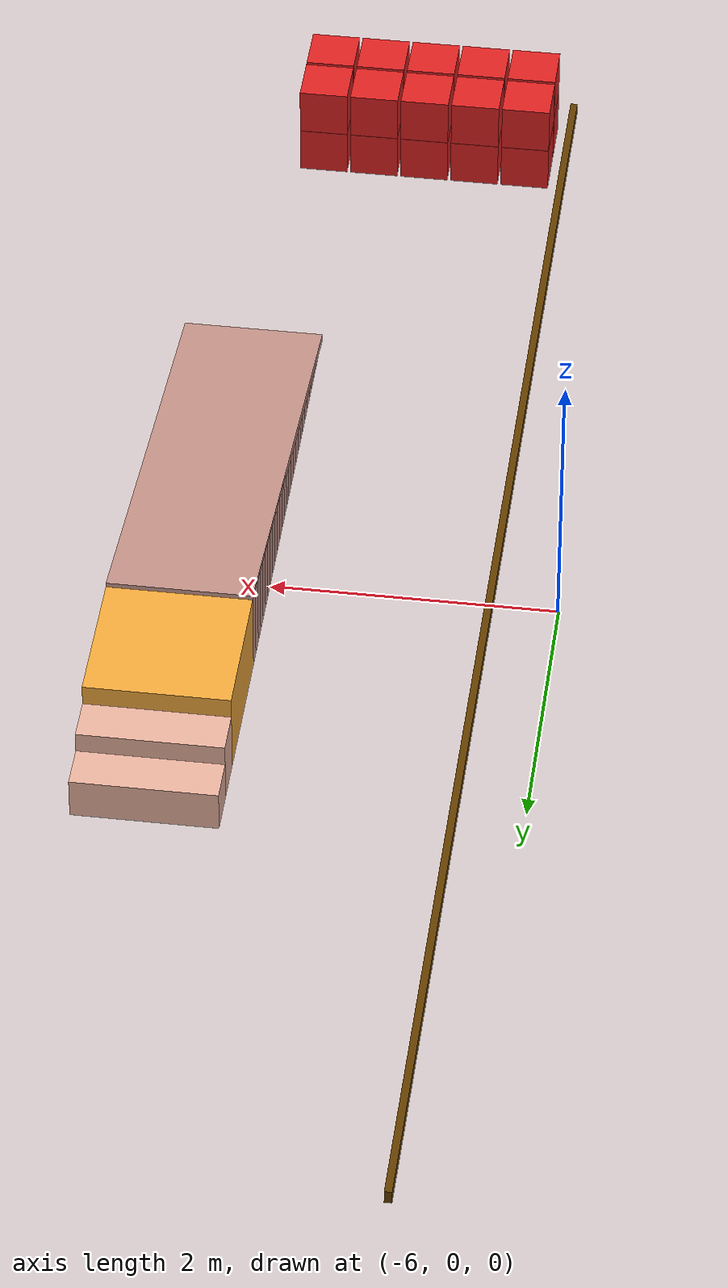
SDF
<sdf version="1.6">
 <world name="robocon2027_arena">
  <model name="fence_pW">
   <static>true</static>
   <pose>-5.5250 0.0000 0.0500 0.000000 0.000000 0.000000</pose>
   <link name="link">
    <collision name="col"><geometry><box><size>0.05 11.1 0.1</size></box></geometry></collision>
    <visual name="vis">
     <geometry><box><size>0.05 11.1 0.1</size></box></geometry>
     <material>
      <ambient>0.392 0.243 0.000 1.00</ambient>
      <diffuse>0.392 0.243 0.000 1.00</diffuse>
      <specular>0.04 0.04 0.04 1</specular>
      <emissive>0 0 0 1</emissive>
     </material>
    </visual>
   </link>
  </model>
  <model name="ramp_red">
   <static>true</static>
   <pose>-3.5000 -0.9500 0.3000 0.000000 -0.169778 1.570796</pose>
   <link name="link">
    <collision name="col"><geometry><box><size>3.5500000000000003 1.0 0.06</size></box></geometry></collision>
    <visual name="vis">
     <geometry><box><size>3.5500000000000003 1.0 0.06</size></box></geometry>
     <material>
      <ambient>0.784 0.588 0.549 1.00</ambient>
      <diffuse>0.784 0.588 0.549 1.00</diffuse>
      <specular>0.04 0.04 0.04 1</specular>
      <emissive>0 0 0 1</emissive>
     </material>
    </visual>
   </link>
  </model>
  <model name="rampsup_red_1">
   <static>true</static>
   <pose>-3.5000 -2.5250 0.0150 0.000000 0.000000 0.000000</pose>
   <link name="link">
    <collision name="col"><geometry><box><size>1.0 0.11866666666666698 0.03</size></box></geometry></collision>
    <visual name="vis">
     <geometry><box><size>1.0 0.11866666666666698 0.03</size></box></geometry>
     <material>
      <ambient>0.784 0.588 0.549 1.00</ambient>
      <diffuse>0.784 0.588 0.549 1.00</diffuse>
      <specular>0.04 0.04 0.04 1</specular>
      <emissive>0 0 0 1</emissive>
     </material>
    </visual>
   </link>
  </model>
  <model name="rampsup_red_2">
   <static>true</static>
   <pose>-3.5000 -2.4083 0.0250 0.000000 0.000000 0.000000</pose>
   <link name="link">
    <collision name="col">
     <geometry><box><size>1.0 0.11866666666666652 0.05000000000000005</size></box></geometry>
    </collision>
    <visual name="vis">
     <geometry><box><size>1.0 0.11866666666666652 0.05000000000000005</size></box></geometry>
     <material>
      <ambient>0.784 0.588 0.549 1.00</ambient>
      <diffuse>0.784 0.588 0.549 1.00</diffuse>
      <specular>0.04 0.04 0.04 1</specular>
      <emissive>0 0 0 1</emissive>
     </material>
    </visual>
   </link>
  </model>
  <model name="rampsup_red_3">
   <static>true</static>
   <pose>-3.5000 -2.2917 0.0350 0.000000 0.000000 0.000000</pose>
   <link name="link">
    <collision name="col">
     <geometry><box><size>1.0 0.11866666666666652 0.06999999999999995</size></box></geometry>
    </collision>
    <visual name="vis">
     <geometry><box><size>1.0 0.11866666666666652 0.06999999999999995</size></box></geometry>
     <material>
      <ambient>0.784 0.588 0.549 1.00</ambient>
      <diffuse>0.784 0.588 0.549 1.00</diffuse>
      <specular>0.04 0.04 0.04 1</specular>
      <emissive>0 0 0 1</emissive>
     </material>
    </visual>
   </link>
  </model>
  <model name="rampsup_red_4">
   <static>true</static>
   <pose>-3.5000 -2.1750 0.0450 0.000000 0.000000 0.000000</pose>
   <link name="link">
    <collision name="col"><geometry><box><size>1.0 0.11866666666666698 0.09</size></box></geometry></collision>
    <visual name="vis">
     <geometry><box><size>1.0 0.11866666666666698 0.09</size></box></geometry>
     <material>
      <ambient>0.784 0.588 0.549 1.00</ambient>
      <diffuse>0.784 0.588 0.549 1.00</diffuse>
      <specular>0.04 0.04 0.04 1</specular>
      <emissive>0 0 0 1</emissive>
     </material>
    </visual>
   </link>
  </model>
  <model name="rampsup_red_5">
   <static>true</static>
   <pose>-3.5000 -2.0583 0.0550 0.000000 0.000000 0.000000</pose>
   <link name="link">
    <collision name="col">
     <geometry><box><size>1.0 0.11866666666666652 0.11000000000000006</size></box></geometry>
    </collision>
    <visual name="vis">
     <geometry><box><size>1.0 0.11866666666666652 0.11000000000000006</size></box></geometry>
     <material>
      <ambient>0.784 0.588 0.549 1.00</ambient>
      <diffuse>0.784 0.588 0.549 1.00</diffuse>
      <specular>0.04 0.04 0.04 1</specular>
      <emissive>0 0 0 1</emissive>
     </material>
    </visual>
   </link>
  </model>
  <model name="rampsup_red_6">
   <static>true</static>
   <pose>-3.5000 -1.9417 0.0650 0.000000 0.000000 0.000000</pose>
   <link name="link">
    <collision name="col">
     <geometry><box><size>1.0 0.11866666666666652 0.12999999999999998</size></box></geometry>
    </collision>
    <visual name="vis">
     <geometry><box><size>1.0 0.11866666666666652 0.12999999999999998</size></box></geometry>
     <material>
      <ambient>0.784 0.588 0.549 1.00</ambient>
      <diffuse>0.784 0.588 0.549 1.00</diffuse>
      <specular>0.04 0.04 0.04 1</specular>
      <emissive>0 0 0 1</emissive>
     </material>
    </visual>
   </link>
  </model>
  <model name="rampsup_red_7">
   <static>true</static>
   <pose>-3.5000 -1.8250 0.0750 0.000000 0.000000 0.000000</pose>
   <link name="link">
    <collision name="col"><geometry><box><size>1.0 0.11866666666666698 0.15</size></box></geometry></collision>
    <visual name="vis">
     <geometry><box><size>1.0 0.11866666666666698 0.15</size></box></geometry>
     <material>
      <ambient>0.784 0.588 0.549 1.00</ambient>
      <diffuse>0.784 0.588 0.549 1.00</diffuse>
      <specular>0.04 0.04 0.04 1</specular>
      <emissive>0 0 0 1</emissive>
     </material>
    </visual>
   </link>
  </model>
  <model name="rampsup_red_8">
   <static>true</static>
   <pose>-3.5000 -1.7083 0.0850 0.000000 0.000000 0.000000</pose>
   <link name="link">
    <collision name="col"><geometry><box><size>1.0 0.11866666666666652 0.17</size></box></geometry></collision>
    <visual name="vis">
     <geometry><box><size>1.0 0.11866666666666652 0.17</size></box></geometry>
     <material>
      <ambient>0.784 0.588 0.549 1.00</ambient>
      <diffuse>0.784 0.588 0.549 1.00</diffuse>
      <specular>0.04 0.04 0.04 1</specular>
      <emissive>0 0 0 1</emissive>
     </material>
    </visual>
   </link>
  </model>
  <model name="rampsup_red_9">
   <static>true</static>
   <pose>-3.5000 -1.5917 0.0950 0.000000 0.000000 0.000000</pose>
   <link name="link">
    <collision name="col">
     <geometry><box><size>1.0 0.11866666666666674 0.19000000000000003</size></box></geometry>
    </collision>
    <visual name="vis">
     <geometry><box><size>1.0 0.11866666666666674 0.19000000000000003</size></box></geometry>
     <material>
      <ambient>0.784 0.588 0.549 1.00</ambient>
      <diffuse>0.784 0.588 0.549 1.00</diffuse>
      <specular>0.04 0.04 0.04 1</specular>
      <emissive>0 0 0 1</emissive>
     </material>
    </visual>
   </link>
  </model>
  <model name="rampsup_red_10">
   <static>true</static>
   <pose>-3.5000 -1.4750 0.1050 0.000000 0.000000 0.000000</pose>
   <link name="link">
    <collision name="col"><geometry><box><size>1.0 0.11866666666666652 0.21</size></box></geometry></collision>
    <visual name="vis">
     <geometry><box><size>1.0 0.11866666666666652 0.21</size></box></geometry>
     <material>
      <ambient>0.784 0.588 0.549 1.00</ambient>
      <diffuse>0.784 0.588 0.549 1.00</diffuse>
      <specular>0.04 0.04 0.04 1</specular>
      <emissive>0 0 0 1</emissive>
     </material>
    </visual>
   </link>
  </model>
  <model name="rampsup_red_11">
   <static>true</static>
   <pose>-3.5000 -1.3583 0.1150 0.000000 0.000000 0.000000</pose>
   <link name="link">
    <collision name="col">
     <geometry><box><size>1.0 0.11866666666666674 0.22999999999999998</size></box></geometry>
    </collision>
    <visual name="vis">
     <geometry><box><size>1.0 0.11866666666666674 0.22999999999999998</size></box></geometry>
     <material>
      <ambient>0.784 0.588 0.549 1.00</ambient>
      <diffuse>0.784 0.588 0.549 1.00</diffuse>
      <specular>0.04 0.04 0.04 1</specular>
      <emissive>0 0 0 1</emissive>
     </material>
    </visual>
   </link>
  </model>
  <model name="rampsup_red_12">
   <static>true</static>
   <pose>-3.5000 -1.2417 0.1250 0.000000 0.000000 0.000000</pose>
   <link name="link">
    <collision name="col">
     <geometry><box><size>1.0 0.11866666666666674 0.25000000000000006</size></box></geometry>
    </collision>
    <visual name="vis">
     <geometry><box><size>1.0 0.11866666666666674 0.25000000000000006</size></box></geometry>
     <material>
      <ambient>0.784 0.588 0.549 1.00</ambient>
      <diffuse>0.784 0.588 0.549 1.00</diffuse>
      <specular>0.04 0.04 0.04 1</specular>
      <emissive>0 0 0 1</emissive>
     </material>
    </visual>
   </link>
  </model>
  <model name="rampsup_red_13">
   <static>true</static>
   <pose>-3.5000 -1.1250 0.1350 0.000000 0.000000 0.000000</pose>
   <link name="link">
    <collision name="col"><geometry><box><size>1.0 0.11866666666666652 0.27</size></box></geometry></collision>
    <visual name="vis">
     <geometry><box><size>1.0 0.11866666666666652 0.27</size></box></geometry>
     <material>
      <ambient>0.784 0.588 0.549 1.00</ambient>
      <diffuse>0.784 0.588 0.549 1.00</diffuse>
      <specular>0.04 0.04 0.04 1</specular>
      <emissive>0 0 0 1</emissive>
     </material>
    </visual>
   </link>
  </model>
  <model name="rampsup_red_14">
   <static>true</static>
   <pose>-3.5000 -1.0083 0.1450 0.000000 0.000000 0.000000</pose>
   <link name="link">
    <collision name="col">
     <geometry><box><size>1.0 0.11866666666666674 0.2899999999999999</size></box></geometry>
    </collision>
    <visual name="vis">
     <geometry><box><size>1.0 0.11866666666666674 0.2899999999999999</size></box></geometry>
     <material>
      <ambient>0.784 0.588 0.549 1.00</ambient>
      <diffuse>0.784 0.588 0.549 1.00</diffuse>
      <specular>0.04 0.04 0.04 1</specular>
      <emissive>0 0 0 1</emissive>
     </material>
    </visual>
   </link>
  </model>
  <model name="rampsup_red_15">
   <static>true</static>
   <pose>-3.5000 -0.8917 0.1550 0.000000 0.000000 0.000000</pose>
   <link name="link">
    <collision name="col"><geometry><box><size>1.0 0.11866666666666674 0.31</size></box></geometry></collision>
    <visual name="vis">
     <geometry><box><size>1.0 0.11866666666666674 0.31</size></box></geometry>
     <material>
      <ambient>0.784 0.588 0.549 1.00</ambient>
      <diffuse>0.784 0.588 0.549 1.00</diffuse>
      <specular>0.04 0.04 0.04 1</specular>
      <emissive>0 0 0 1</emissive>
     </material>
    </visual>
   </link>
  </model>
  <model name="rampsup_red_16">
   <static>true</static>
   <pose>-3.5000 -0.7750 0.1650 0.000000 0.000000 0.000000</pose>
   <link name="link">
    <collision name="col"><geometry><box><size>1.0 0.11866666666666652 0.33</size></box></geometry></collision>
    <visual name="vis">
     <geometry><box><size>1.0 0.11866666666666652 0.33</size></box></geometry>
     <material>
      <ambient>0.784 0.588 0.549 1.00</ambient>
      <diffuse>0.784 0.588 0.549 1.00</diffuse>
      <specular>0.04 0.04 0.04 1</specular>
      <emissive>0 0 0 1</emissive>
     </material>
    </visual>
   </link>
  </model>
  <model name="rampsup_red_17">
   <static>true</static>
   <pose>-3.5000 -0.6583 0.1750 0.000000 0.000000 0.000000</pose>
   <link name="link">
    <collision name="col">
     <geometry><box><size>1.0 0.11866666666666674 0.35000000000000003</size></box></geometry>
    </collision>
    <visual name="vis">
     <geometry><box><size>1.0 0.11866666666666674 0.35000000000000003</size></box></geometry>
     <material>
      <ambient>0.784 0.588 0.549 1.00</ambient>
      <diffuse>0.784 0.588 0.549 1.00</diffuse>
      <specular>0.04 0.04 0.04 1</specular>
      <emissive>0 0 0 1</emissive>
     </material>
    </visual>
   </link>
  </model>
  <model name="rampsup_red_18">
   <static>true</static>
   <pose>-3.5000 -0.5417 0.1850 0.000000 0.000000 0.000000</pose>
   <link name="link">
    <collision name="col">
     <geometry><box><size>1.0 0.11866666666666652 0.36999999999999994</size></box></geometry>
    </collision>
    <visual name="vis">
     <geometry><box><size>1.0 0.11866666666666652 0.36999999999999994</size></box></geometry>
     <material>
      <ambient>0.784 0.588 0.549 1.00</ambient>
      <diffuse>0.784 0.588 0.549 1.00</diffuse>
      <specular>0.04 0.04 0.04 1</specular>
      <emissive>0 0 0 1</emissive>
     </material>
    </visual>
   </link>
  </model>
  <model name="rampsup_red_19">
   <static>true</static>
   <pose>-3.5000 -0.4250 0.1950 0.000000 0.000000 0.000000</pose>
   <link name="link">
    <collision name="col"><geometry><box><size>1.0 0.11866666666666698 0.39</size></box></geometry></collision>
    <visual name="vis">
     <geometry><box><size>1.0 0.11866666666666698 0.39</size></box></geometry>
     <material>
      <ambient>0.784 0.588 0.549 1.00</ambient>
      <diffuse>0.784 0.588 0.549 1.00</diffuse>
      <specular>0.04 0.04 0.04 1</specular>
      <emissive>0 0 0 1</emissive>
     </material>
    </visual>
   </link>
  </model>
  <model name="rampsup_red_20">
   <static>true</static>
   <pose>-3.5000 -0.3083 0.2050 0.000000 0.000000 0.000000</pose>
   <link name="link">
    <collision name="col">
     <geometry><box><size>1.0 0.11866666666666652 0.4100000000000001</size></box></geometry>
    </collision>
    <visual name="vis">
     <geometry><box><size>1.0 0.11866666666666652 0.4100000000000001</size></box></geometry>
     <material>
      <ambient>0.784 0.588 0.549 1.00</ambient>
      <diffuse>0.784 0.588 0.549 1.00</diffuse>
      <specular>0.04 0.04 0.04 1</specular>
      <emissive>0 0 0 1</emissive>
     </material>
    </visual>
   </link>
  </model>
  <model name="rampsup_red_21">
   <static>true</static>
   <pose>-3.5000 -0.1917 0.2150 0.000000 0.000000 0.000000</pose>
   <link name="link">
    <collision name="col">
     <geometry><box><size>1.0 0.11866666666666652 0.42999999999999994</size></box></geometry>
    </collision>
    <visual name="vis">
     <geometry><box><size>1.0 0.11866666666666652 0.42999999999999994</size></box></geometry>
     <material>
      <ambient>0.784 0.588 0.549 1.00</ambient>
      <diffuse>0.784 0.588 0.549 1.00</diffuse>
      <specular>0.04 0.04 0.04 1</specular>
      <emissive>0 0 0 1</emissive>
     </material>
    </visual>
   </link>
  </model>
  <model name="rampsup_red_22">
   <static>true</static>
   <pose>-3.5000 -0.0750 0.2250 0.000000 0.000000 0.000000</pose>
   <link name="link">
    <collision name="col"><geometry><box><size>1.0 0.11866666666666698 0.45</size></box></geometry></collision>
    <visual name="vis">
     <geometry><box><size>1.0 0.11866666666666698 0.45</size></box></geometry>
     <material>
      <ambient>0.784 0.588 0.549 1.00</ambient>
      <diffuse>0.784 0.588 0.549 1.00</diffuse>
      <specular>0.04 0.04 0.04 1</specular>
      <emissive>0 0 0 1</emissive>
     </material>
    </visual>
   </link>
  </model>
  <model name="rampsup_red_23">
   <static>true</static>
   <pose>-3.5000 0.0417 0.2350 0.000000 0.000000 0.000000</pose>
   <link name="link">
    <collision name="col">
     <geometry><box><size>1.0 0.11866666666666652 0.4700000000000001</size></box></geometry>
    </collision>
    <visual name="vis">
     <geometry><box><size>1.0 0.11866666666666652 0.4700000000000001</size></box></geometry>
     <material>
      <ambient>0.784 0.588 0.549 1.00</ambient>
      <diffuse>0.784 0.588 0.549 1.00</diffuse>
      <specular>0.04 0.04 0.04 1</specular>
      <emissive>0 0 0 1</emissive>
     </material>
    </visual>
   </link>
  </model>
  <model name="rampsup_red_24">
   <static>true</static>
   <pose>-3.5000 0.1583 0.2450 0.000000 0.000000 0.000000</pose>
   <link name="link">
    <collision name="col">
     <geometry><box><size>1.0 0.11866666666666652 0.48999999999999994</size></box></geometry>
    </collision>
    <visual name="vis">
     <geometry><box><size>1.0 0.11866666666666652 0.48999999999999994</size></box></geometry>
     <material>
      <ambient>0.784 0.588 0.549 1.00</ambient>
      <diffuse>0.784 0.588 0.549 1.00</diffuse>
      <specular>0.04 0.04 0.04 1</specular>
      <emissive>0 0 0 1</emissive>
     </material>
    </visual>
   </link>
  </model>
  <model name="rampsup_red_25">
   <static>true</static>
   <pose>-3.5000 0.2750 0.2550 0.000000 0.000000 0.000000</pose>
   <link name="link">
    <collision name="col"><geometry><box><size>1.0 0.11866666666666698 0.51</size></box></geometry></collision>
    <visual name="vis">
     <geometry><box><size>1.0 0.11866666666666698 0.51</size></box></geometry>
     <material>
      <ambient>0.784 0.588 0.549 1.00</ambient>
      <diffuse>0.784 0.588 0.549 1.00</diffuse>
      <specular>0.04 0.04 0.04 1</specular>
      <emissive>0 0 0 1</emissive>
     </material>
    </visual>
   </link>
  </model>
  <model name="rampsup_red_26">
   <static>true</static>
   <pose>-3.5000 0.3917 0.2650 0.000000 0.000000 0.000000</pose>
   <link name="link">
    <collision name="col">
     <geometry><box><size>1.0 0.11866666666666652 0.5300000000000001</size></box></geometry>
    </collision>
    <visual name="vis">
     <geometry><box><size>1.0 0.11866666666666652 0.5300000000000001</size></box></geometry>
     <material>
      <ambient>0.784 0.588 0.549 1.00</ambient>
      <diffuse>0.784 0.588 0.549 1.00</diffuse>
      <specular>0.04 0.04 0.04 1</specular>
      <emissive>0 0 0 1</emissive>
     </material>
    </visual>
   </link>
  </model>
  <model name="rampsup_red_27">
   <static>true</static>
   <pose>-3.5000 0.5083 0.2750 0.000000 0.000000 0.000000</pose>
   <link name="link">
    <collision name="col">
     <geometry><box><size>1.0 0.11866666666666652 0.5499999999999999</size></box></geometry>
    </collision>
    <visual name="vis">
     <geometry><box><size>1.0 0.11866666666666652 0.5499999999999999</size></box></geometry>
     <material>
      <ambient>0.784 0.588 0.549 1.00</ambient>
      <diffuse>0.784 0.588 0.549 1.00</diffuse>
      <specular>0.04 0.04 0.04 1</specular>
      <emissive>0 0 0 1</emissive>
     </material>
    </visual>
   </link>
  </model>
  <model name="rampsup_red_28">
   <static>true</static>
   <pose>-3.5000 0.6250 0.2850 0.000000 0.000000 0.000000</pose>
   <link name="link">
    <collision name="col">
     <geometry><box><size>1.0 0.11866666666666698 0.5700000000000001</size></box></geometry>
    </collision>
    <visual name="vis">
     <geometry><box><size>1.0 0.11866666666666698 0.5700000000000001</size></box></geometry>
     <material>
      <ambient>0.784 0.588 0.549 1.00</ambient>
      <diffuse>0.784 0.588 0.549 1.00</diffuse>
      <specular>0.04 0.04 0.04 1</specular>
      <emissive>0 0 0 1</emissive>
     </material>
    </visual>
   </link>
  </model>
  <model name="rampsup_red_29">
   <static>true</static>
   <pose>-3.5000 0.7417 0.2950 0.000000 0.000000 0.000000</pose>
   <link name="link">
    <collision name="col">
     <geometry><box><size>1.0 0.11866666666666652 0.5900000000000001</size></box></geometry>
    </collision>
    <visual name="vis">
     <geometry><box><size>1.0 0.11866666666666652 0.5900000000000001</size></box></geometry>
     <material>
      <ambient>0.784 0.588 0.549 1.00</ambient>
      <diffuse>0.784 0.588 0.549 1.00</diffuse>
      <specular>0.04 0.04 0.04 1</specular>
      <emissive>0 0 0 1</emissive>
     </material>
    </visual>
   </link>
  </model>
  <model name="plat_red">
   <static>true</static>
   <pose>-3.5000 1.3000 0.3000 0.000000 0.000000 0.000000</pose>
   <link name="link">
    <collision name="col"><geometry><box><size>1.0 1.0 0.6</size></box></geometry></collision>
    <visual name="vis">
     <geometry><box><size>1.0 1.0 0.6</size></box></geometry>
     <material>
      <ambient>0.961 0.667 0.235 1.00</ambient>
      <diffuse>0.961 0.667 0.235 1.00</diffuse>
      <specular>0.04 0.04 0.04 1</specular>
      <emissive>0 0 0 1</emissive>
     </material>
    </visual>
   </link>
  </model>
  <model name="stp_red_0">
   <static>true</static>
   <pose>-3.5000 1.9500 0.2250 0.000000 0.000000 0.000000</pose>
   <link name="link">
    <collision name="col"><geometry><box><size>1.0 0.3 0.45</size></box></geometry></collision>
    <visual name="vis">
     <geometry><box><size>1.0 0.3 0.45</size></box></geometry>
     <material>
      <ambient>0.922 0.706 0.627 1.00</ambient>
      <diffuse>0.922 0.706 0.627 1.00</diffuse>
      <specular>0.04 0.04 0.04 1</specular>
      <emissive>0 0 0 1</emissive>
     </material>
    </visual>
   </link>
  </model>
  <model name="stp_red_1">
   <static>true</static>
   <pose>-3.5000 2.2500 0.1500 0.000000 0.000000 0.000000</pose>
   <link name="link">
    <collision name="col"><geometry><box><size>1.0 0.3 0.3</size></box></geometry></collision>
    <visual name="vis">
     <geometry><box><size>1.0 0.3 0.3</size></box></geometry>
     <material>
      <ambient>0.922 0.706 0.627 1.00</ambient>
      <diffuse>0.922 0.706 0.627 1.00</diffuse>
      <specular>0.04 0.04 0.04 1</specular>
      <emissive>0 0 0 1</emissive>
     </material>
    </visual>
   </link>
  </model>
  <model name="earth_0">
   <static>false</static>
   <pose>-5.2500 -5.1875 0.1750 0 0 0</pose>
   <link name="link">
    <inertial><mass>0.6</mass><inertia><ixx>0.01225</ixx><iyy>0.01225</iyy><izz>0.01225</izz></inertia></inertial>
    <collision name="col">
     <geometry><box><size>0.35000000000000003 0.35000000000000003 0.35000000000000003</size></box></geometry>
    </collision>
    <visual name="vis">
     <geometry><box><size>0.35000000000000003 0.35000000000000003 0.35000000000000003</size></box></geometry>
     <material>
      <ambient>0.875 0.133 0.133 1.00</ambient>
      <diffuse>0.875 0.133 0.133 1.00</diffuse>
      <specular>0.04 0.04 0.04 1</specular>
      <emissive>0 0 0 1</emissive>
     </material>
    </visual>
   </link>
  </model>
  <model name="earth_1">
   <static>false</static>
   <pose>-5.2500 -5.1875 0.5280 0 0 0</pose>
   <link name="link">
    <inertial><mass>0.6</mass><inertia><ixx>0.01225</ixx><iyy>0.01225</iyy><izz>0.01225</izz></inertia></inertial>
    <collision name="col">
     <geometry><box><size>0.35000000000000003 0.35000000000000003 0.35000000000000003</size></box></geometry>
    </collision>
    <visual name="vis">
     <geometry><box><size>0.35000000000000003 0.35000000000000003 0.35000000000000003</size></box></geometry>
     <material>
      <ambient>0.875 0.133 0.133 1.00</ambient>
      <diffuse>0.875 0.133 0.133 1.00</diffuse>
      <specular>0.04 0.04 0.04 1</specular>
      <emissive>0 0 0 1</emissive>
     </material>
    </visual>
   </link>
  </model>
  <model name="earth_2">
   <static>false</static>
   <pose>-5.2500 -4.8125 0.1750 0 0 0</pose>
   <link name="link">
    <inertial><mass>0.6</mass><inertia><ixx>0.01225</ixx><iyy>0.01225</iyy><izz>0.01225</izz></inertia></inertial>
    <collision name="col">
     <geometry><box><size>0.35000000000000003 0.35000000000000003 0.35000000000000003</size></box></geometry>
    </collision>
    <visual name="vis">
     <geometry><box><size>0.35000000000000003 0.35000000000000003 0.35000000000000003</size></box></geometry>
     <material>
      <ambient>0.875 0.133 0.133 1.00</ambient>
      <diffuse>0.875 0.133 0.133 1.00</diffuse>
      <specular>0.04 0.04 0.04 1</specular>
      <emissive>0 0 0 1</emissive>
     </material>
    </visual>
   </link>
  </model>
  <model name="earth_3">
   <static>false</static>
   <pose>-5.2500 -4.8125 0.5280 0 0 0</pose>
   <link name="link">
    <inertial><mass>0.6</mass><inertia><ixx>0.01225</ixx><iyy>0.01225</iyy><izz>0.01225</izz></inertia></inertial>
    <collision name="col">
     <geometry><box><size>0.35000000000000003 0.35000000000000003 0.35000000000000003</size></box></geometry>
    </collision>
    <visual name="vis">
     <geometry><box><size>0.35000000000000003 0.35000000000000003 0.35000000000000003</size></box></geometry>
     <material>
      <ambient>0.875 0.133 0.133 1.00</ambient>
      <diffuse>0.875 0.133 0.133 1.00</diffuse>
      <specular>0.04 0.04 0.04 1</specular>
      <emissive>0 0 0 1</emissive>
     </material>
    </visual>
   </link>
  </model>
  <model name="earth_4">
   <static>false</static>
   <pose>-4.8750 -5.1875 0.1750 0 0 0</pose>
   <link name="link">
    <inertial><mass>0.6</mass><inertia><ixx>0.01225</ixx><iyy>0.01225</iyy><izz>0.01225</izz></inertia></inertial>
    <collision name="col">
     <geometry><box><size>0.35000000000000003 0.35000000000000003 0.35000000000000003</size></box></geometry>
    </collision>
    <visual name="vis">
     <geometry><box><size>0.35000000000000003 0.35000000000000003 0.35000000000000003</size></box></geometry>
     <material>
      <ambient>0.875 0.133 0.133 1.00</ambient>
      <diffuse>0.875 0.133 0.133 1.00</diffuse>
      <specular>0.04 0.04 0.04 1</specular>
      <emissive>0 0 0 1</emissive>
     </material>
    </visual>
   </link>
  </model>
  <model name="earth_5">
   <static>false</static>
   <pose>-4.8750 -5.1875 0.5280 0 0 0</pose>
   <link name="link">
    <inertial><mass>0.6</mass><inertia><ixx>0.01225</ixx><iyy>0.01225</iyy><izz>0.01225</izz></inertia></inertial>
    <collision name="col">
     <geometry><box><size>0.35000000000000003 0.35000000000000003 0.35000000000000003</size></box></geometry>
    </collision>
    <visual name="vis">
     <geometry><box><size>0.35000000000000003 0.35000000000000003 0.35000000000000003</size></box></geometry>
     <material>
      <ambient>0.875 0.133 0.133 1.00</ambient>
      <diffuse>0.875 0.133 0.133 1.00</diffuse>
      <specular>0.04 0.04 0.04 1</specular>
      <emissive>0 0 0 1</emissive>
     </material>
    </visual>
   </link>
  </model>
  <model name="earth_6">
   <static>false</static>
   <pose>-4.8750 -4.8125 0.1750 0 0 0</pose>
   <link name="link">
    <inertial><mass>0.6</mass><inertia><ixx>0.01225</ixx><iyy>0.01225</iyy><izz>0.01225</izz></inertia></inertial>
    <collision name="col">
     <geometry><box><size>0.35000000000000003 0.35000000000000003 0.35000000000000003</size></box></geometry>
    </collision>
    <visual name="vis">
     <geometry><box><size>0.35000000000000003 0.35000000000000003 0.35000000000000003</size></box></geometry>
     <material>
      <ambient>0.875 0.133 0.133 1.00</ambient>
      <diffuse>0.875 0.133 0.133 1.00</diffuse>
      <specular>0.04 0.04 0.04 1</specular>
      <emissive>0 0 0 1</emissive>
     </material>
    </visual>
   </link>
  </model>
  <model name="earth_7">
   <static>false</static>
   <pose>-4.8750 -4.8125 0.5280 0 0 0</pose>
   <link name="link">
    <inertial><mass>0.6</mass><inertia><ixx>0.01225</ixx><iyy>0.01225</iyy><izz>0.01225</izz></inertia></inertial>
    <collision name="col">
     <geometry><box><size>0.35000000000000003 0.35000000000000003 0.35000000000000003</size></box></geometry>
    </collision>
    <visual name="vis">
     <geometry><box><size>0.35000000000000003 0.35000000000000003 0.35000000000000003</size></box></geometry>
     <material>
      <ambient>0.875 0.133 0.133 1.00</ambient>
      <diffuse>0.875 0.133 0.133 1.00</diffuse>
      <specular>0.04 0.04 0.04 1</specular>
      <emissive>0 0 0 1</emissive>
     </material>
    </visual>
   </link>
  </model>
  <model name="earth_8">
   <static>false</static>
   <pose>-4.5000 -5.1875 0.1750 0 0 0</pose>
   <link name="link">
    <inertial><mass>0.6</mass><inertia><ixx>0.01225</ixx><iyy>0.01225</iyy><izz>0.01225</izz></inertia></inertial>
    <collision name="col">
     <geometry><box><size>0.35000000000000003 0.35000000000000003 0.35000000000000003</size></box></geometry>
    </collision>
    <visual name="vis">
     <geometry><box><size>0.35000000000000003 0.35000000000000003 0.35000000000000003</size></box></geometry>
     <material>
      <ambient>0.875 0.133 0.133 1.00</ambient>
      <diffuse>0.875 0.133 0.133 1.00</diffuse>
      <specular>0.04 0.04 0.04 1</specular>
      <emissive>0 0 0 1</emissive>
     </material>
    </visual>
   </link>
  </model>
  <model name="earth_9">
   <static>false</static>
   <pose>-4.5000 -5.1875 0.5280 0 0 0</pose>
   <link name="link">
    <inertial><mass>0.6</mass><inertia><ixx>0.01225</ixx><iyy>0.01225</iyy><izz>0.01225</izz></inertia></inertial>
    <collision name="col">
     <geometry><box><size>0.35000000000000003 0.35000000000000003 0.35000000000000003</size></box></geometry>
    </collision>
    <visual name="vis">
     <geometry><box><size>0.35000000000000003 0.35000000000000003 0.35000000000000003</size></box></geometry>
     <material>
      <ambient>0.875 0.133 0.133 1.00</ambient>
      <diffuse>0.875 0.133 0.133 1.00</diffuse>
      <specular>0.04 0.04 0.04 1</specular>
      <emissive>0 0 0 1</emissive>
     </material>
    </visual>
   </link>
  </model>
  <model name="earth_10">
   <static>false</static>
   <pose>-4.5000 -4.8125 0.1750 0 0 0</pose>
   <link name="link">
    <inertial><mass>0.6</mass><inertia><ixx>0.01225</ixx><iyy>0.01225</iyy><izz>0.01225</izz></inertia></inertial>
    <collision name="col">
     <geometry><box><size>0.35000000000000003 0.35000000000000003 0.35000000000000003</size></box></geometry>
    </collision>
    <visual name="vis">
     <geometry><box><size>0.35000000000000003 0.35000000000000003 0.35000000000000003</size></box></geometry>
     <material>
      <ambient>0.875 0.133 0.133 1.00</ambient>
      <diffuse>0.875 0.133 0.133 1.00</diffuse>
      <specular>0.04 0.04 0.04 1</specular>
      <emissive>0 0 0 1</emissive>
     </material>
    </visual>
   </link>
  </model>
  <model name="earth_11">
   <static>false</static>
   <pose>-4.5000 -4.8125 0.5280 0 0 0</pose>
   <link name="link">
    <inertial><mass>0.6</mass><inertia><ixx>0.01225</ixx><iyy>0.01225</iyy><izz>0.01225</izz></inertia></inertial>
    <collision name="col">
     <geometry><box><size>0.35000000000000003 0.35000000000000003 0.35000000000000003</size></box></geometry>
    </collision>
    <visual name="vis">
     <geometry><box><size>0.35000000000000003 0.35000000000000003 0.35000000000000003</size></box></geometry>
     <material>
      <ambient>0.875 0.133 0.133 1.00</ambient>
      <diffuse>0.875 0.133 0.133 1.00</diffuse>
      <specular>0.04 0.04 0.04 1</specular>
      <emissive>0 0 0 1</emissive>
     </material>
    </visual>
   </link>
  </model>
  <model name="earth_12">
   <static>false</static>
   <pose>-4.1250 -5.1875 0.1750 0 0 0</pose>
   <link name="link">
    <inertial><mass>0.6</mass><inertia><ixx>0.01225</ixx><iyy>0.01225</iyy><izz>0.01225</izz></inertia></inertial>
    <collision name="col">
     <geometry><box><size>0.35000000000000003 0.35000000000000003 0.35000000000000003</size></box></geometry>
    </collision>
    <visual name="vis">
     <geometry><box><size>0.35000000000000003 0.35000000000000003 0.35000000000000003</size></box></geometry>
     <material>
      <ambient>0.875 0.133 0.133 1.00</ambient>
      <diffuse>0.875 0.133 0.133 1.00</diffuse>
      <specular>0.04 0.04 0.04 1</specular>
      <emissive>0 0 0 1</emissive>
     </material>
    </visual>
   </link>
  </model>
  <model name="earth_13">
   <static>false</static>
   <pose>-4.1250 -5.1875 0.5280 0 0 0</pose>
   <link name="link">
    <inertial><mass>0.6</mass><inertia><ixx>0.01225</ixx><iyy>0.01225</iyy><izz>0.01225</izz></inertia></inertial>
    <collision name="col">
     <geometry><box><size>0.35000000000000003 0.35000000000000003 0.35000000000000003</size></box></geometry>
    </collision>
    <visual name="vis">
     <geometry><box><size>0.35000000000000003 0.35000000000000003 0.35000000000000003</size></box></geometry>
     <material>
      <ambient>0.875 0.133 0.133 1.00</ambient>
      <diffuse>0.875 0.133 0.133 1.00</diffuse>
      <specular>0.04 0.04 0.04 1</specular>
      <emissive>0 0 0 1</emissive>
     </material>
    </visual>
   </link>
  </model>
  <model name="earth_14">
   <static>false</static>
   <pose>-4.1250 -4.8125 0.1750 0 0 0</pose>
   <link name="link">
    <inertial><mass>0.6</mass><inertia><ixx>0.01225</ixx><iyy>0.01225</iyy><izz>0.01225</izz></inertia></inertial>
    <collision name="col">
     <geometry><box><size>0.35000000000000003 0.35000000000000003 0.35000000000000003</size></box></geometry>
    </collision>
    <visual name="vis">
     <geometry><box><size>0.35000000000000003 0.35000000000000003 0.35000000000000003</size></box></geometry>
     <material>
      <ambient>0.875 0.133 0.133 1.00</ambient>
      <diffuse>0.875 0.133 0.133 1.00</diffuse>
      <specular>0.04 0.04 0.04 1</specular>
      <emissive>0 0 0 1</emissive>
     </material>
    </visual>
   </link>
  </model>
  <model name="earth_15">
   <static>false</static>
   <pose>-4.1250 -4.8125 0.5280 0 0 0</pose>
   <link name="link">
    <inertial><mass>0.6</mass><inertia><ixx>0.01225</ixx><iyy>0.01225</iyy><izz>0.01225</izz></inertia></inertial>
    <collision name="col">
     <geometry><box><size>0.35000000000000003 0.35000000000000003 0.35000000000000003</size></box></geometry>
    </collision>
    <visual name="vis">
     <geometry><box><size>0.35000000000000003 0.35000000000000003 0.35000000000000003</size></box></geometry>
     <material>
      <ambient>0.875 0.133 0.133 1.00</ambient>
      <diffuse>0.875 0.133 0.133 1.00</diffuse>
      <specular>0.04 0.04 0.04 1</specular>
      <emissive>0 0 0 1</emissive>
     </material>
    </visual>
   </link>
  </model>
  <model name="earth_16">
   <static>false</static>
   <pose>-3.7500 -5.1875 0.1750 0 0 0</pose>
   <link name="link">
    <inertial><mass>0.6</mass><inertia><ixx>0.01225</ixx><iyy>0.01225</iyy><izz>0.01225</izz></inertia></inertial>
    <collision name="col">
     <geometry><box><size>0.35000000000000003 0.35000000000000003 0.35000000000000003</size></box></geometry>
    </collision>
    <visual name="vis">
     <geometry><box><size>0.35000000000000003 0.35000000000000003 0.35000000000000003</size></box></geometry>
     <material>
      <ambient>0.875 0.133 0.133 1.00</ambient>
      <diffuse>0.875 0.133 0.133 1.00</diffuse>
      <specular>0.04 0.04 0.04 1</specular>
      <emissive>0 0 0 1</emissive>
     </material>
    </visual>
   </link>
  </model>
  <model name="earth_17">
   <static>false</static>
   <pose>-3.7500 -5.1875 0.5280 0 0 0</pose>
   <link name="link">
    <inertial><mass>0.6</mass><inertia><ixx>0.01225</ixx><iyy>0.01225</iyy><izz>0.01225</izz></inertia></inertial>
    <collision name="col">
     <geometry><box><size>0.35000000000000003 0.35000000000000003 0.35000000000000003</size></box></geometry>
    </collision>
    <visual name="vis">
     <geometry><box><size>0.35000000000000003 0.35000000000000003 0.35000000000000003</size></box></geometry>
     <material>
      <ambient>0.875 0.133 0.133 1.00</ambient>
      <diffuse>0.875 0.133 0.133 1.00</diffuse>
      <specular>0.04 0.04 0.04 1</specular>
      <emissive>0 0 0 1</emissive>
     </material>
    </visual>
   </link>
  </model>
  <model name="earth_18">
   <static>false</static>
   <pose>-3.7500 -4.8125 0.1750 0 0 0</pose>
   <link name="link">
    <inertial><mass>0.6</mass><inertia><ixx>0.01225</ixx><iyy>0.01225</iyy><izz>0.01225</izz></inertia></inertial>
    <collision name="col">
     <geometry><box><size>0.35000000000000003 0.35000000000000003 0.35000000000000003</size></box></geometry>
    </collision>
    <visual name="vis">
     <geometry><box><size>0.35000000000000003 0.35000000000000003 0.35000000000000003</size></box></geometry>
     <material>
      <ambient>0.875 0.133 0.133 1.00</ambient>
      <diffuse>0.875 0.133 0.133 1.00</diffuse>
      <specular>0.04 0.04 0.04 1</specular>
      <emissive>0 0 0 1</emissive>
     </material>
    </visual>
   </link>
  </model>
  <model name="earth_19">
   <static>false</static>
   <pose>-3.7500 -4.8125 0.5280 0 0 0</pose>
   <link name="link">
    <inertial><mass>0.6</mass><inertia><ixx>0.01225</ixx><iyy>0.01225</iyy><izz>0.01225</izz></inertia></inertial>
    <collision name="col">
     <geometry><box><size>0.35000000000000003 0.35000000000000003 0.35000000000000003</size></box></geometry>
    </collision>
    <visual name="vis">
     <geometry><box><size>0.35000000000000003 0.35000000000000003 0.35000000000000003</size></box></geometry>
     <material>
      <ambient>0.875 0.133 0.133 1.00</ambient>
      <diffuse>0.875 0.133 0.133 1.00</diffuse>
      <specular>0.04 0.04 0.04 1</specular>
      <emissive>0 0 0 1</emissive>
     </material>
    </visual>
   </link>
  </model>
 </world>
</sdf>
